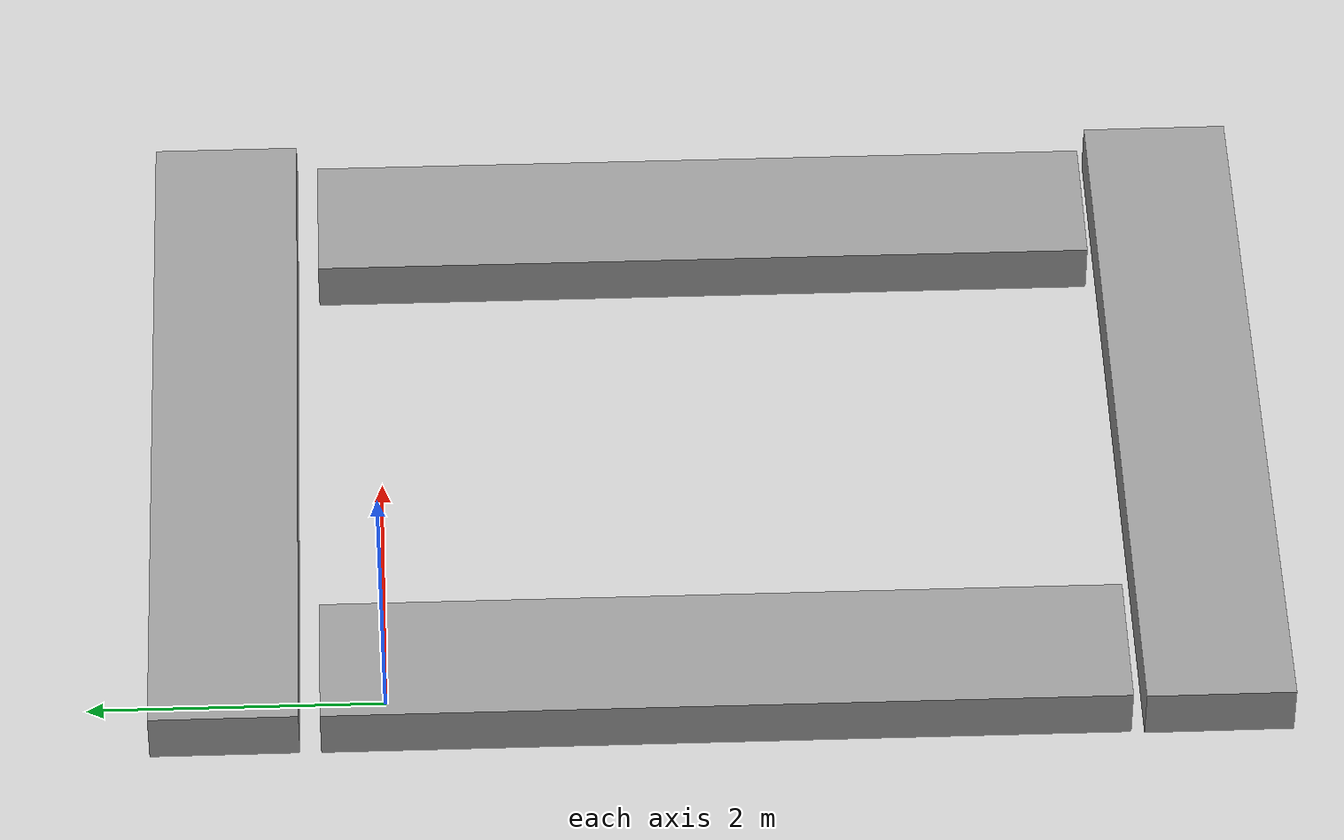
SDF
<sdf version="1.7">
 <world name="default">
  <light name="sun" type="directional">
   <pose>0 0 10 0 -0 0</pose>
   <diffuse>0.8 0.8 0.8 1</diffuse>
   <specular>0.2 0.2 0.2 1</specular>
   <attenuation>
    <range>1000</range>
    <constant>0.9</constant>
    <linear>0.01</linear>
    <quadratic>0.001</quadratic>
   </attenuation>
   <direction>-0.5 0.1 -0.9</direction>
   <spot><inner_angle>0</inner_angle><outer_angle>0</outer_angle><falloff>0</falloff></spot>
  </light>
  <model name="ground_plane">
   <static>1</static>
   <link name="link">
    <collision name="collision">
     <geometry><plane><normal>0 0 1</normal><size>100 100</size></plane></geometry>
     <surface>
      <contact><collide_bitmask>65535</collide_bitmask></contact>
      <friction><ode><mu>100</mu><mu2>50</mu2></ode></friction>
     </surface>
    </collision>
    <visual name="visual">
     <cast_shadows>0</cast_shadows>
     <geometry><plane><normal>0 0 1</normal><size>100 100</size></plane></geometry>
     <material>
      <script><uri>file://media/materials/scripts/gazebo.material</uri><name>Gazebo/Grey</name></script>
     </material>
    </visual>
   </link>
  </model>
  <gravity>0 0 -9.8</gravity>
  <magnetic_field>6e-06 2.3e-05 -4.2e-05</magnetic_field>
  <atmosphere type="adiabatic"/>
  <physics type="ode">
   <max_step_size>0.001</max_step_size>
   <real_time_factor>1</real_time_factor>
   <real_time_update_rate>1000</real_time_update_rate>
  </physics>
  <scene><ambient>0.4 0.4 0.4 1</ambient><background>0.7 0.7 0.7 1</background><shadows>1</shadows></scene>
  <spherical_coordinates>
   <surface_model>EARTH_WGS84</surface_model>
   <latitude_deg>0</latitude_deg>
   <longitude_deg>0</longitude_deg>
   <elevation>0</elevation>
   <heading_deg>0</heading_deg>
  </spherical_coordinates>
  <model name="unit_box">
   <pose>0.084055 -2.27208 0.178558 0.001473 -0 3e-06</pose>
   <link name="link">
    <inertial>
     <mass>1</mass>
     <inertia>
      <ixx>0.166667</ixx>
      <ixy>0</ixy>
      <ixz>0</ixz>
      <iyy>0.166667</iyy>
      <iyz>0</iyz>
      <izz>0.166667</izz>
     </inertia>
    </inertial>
    <collision name="collision"><geometry><box><size>1 5.40805 0.365078</size></box></geometry></collision>
    <visual name="visual">
     <geometry><box><size>1 5.40805 0.365078</size></box></geometry>
     <material>
      <script><name>Gazebo/Grey</name><uri>file://media/materials/scripts/gazebo.material</uri></script>
     </material>
    </visual>
   </link>
  </model>
  <model name="unit_box_clone">
   <pose>2.2697 -5.55576 0.182539 -3.14159 1e-06 1.57369</pose>
   <link name="link">
    <inertial>
     <mass>1</mass>
     <inertia>
      <ixx>0.166667</ixx>
      <ixy>0</ixy>
      <ixz>0</ixz>
      <iyy>0.166667</iyy>
      <iyz>0</iyz>
      <izz>0.166667</izz>
     </inertia>
    </inertial>
    <collision name="collision"><geometry><box><size>1 5.40805 0.365078</size></box></geometry></collision>
    <visual name="visual">
     <geometry><box><size>1 5.40805 0.365078</size></box></geometry>
     <material>
      <script><name>Gazebo/Grey</name><uri>file://media/materials/scripts/gazebo.material</uri></script>
     </material>
    </visual>
   </link>
  </model>
  <model name="unit_box_clone_0">
   <pose>4.26857 -2.27815 0.178558 0.001473 -0 2e-06</pose>
   <link name="link">
    <inertial>
     <mass>1</mass>
     <inertia>
      <ixx>0.166667</ixx>
      <ixy>0</ixy>
      <ixz>0</ixz>
      <iyy>0.166667</iyy>
      <iyz>0</iyz>
      <izz>0.166667</izz>
     </inertia>
    </inertial>
    <collision name="collision"><geometry><box><size>1 5.40805 0.365078</size></box></geometry></collision>
    <visual name="visual">
     <geometry><box><size>1 5.40805 0.365078</size></box></geometry>
     <material>
      <script><name>Gazebo/Grey</name><uri>file://media/materials/scripts/gazebo.material</uri></script>
     </material>
    </visual>
   </link>
  </model>
  <model name="unit_box_clone_clone">
   <pose>2.29082 1.07606 0.178558 -3.14012 -0 1.57086</pose>
   <link name="link">
    <inertial>
     <mass>1</mass>
     <inertia>
      <ixx>0.166667</ixx>
      <ixy>0</ixy>
      <ixz>0</ixz>
      <iyy>0.166667</iyy>
      <iyz>0</iyz>
      <izz>0.166667</izz>
     </inertia>
    </inertial>
    <collision name="collision"><geometry><box><size>1 5.40805 0.365078</size></box></geometry></collision>
    <visual name="visual">
     <geometry><box><size>1 5.40805 0.365078</size></box></geometry>
     <material>
      <script><name>Gazebo/Grey</name><uri>file://media/materials/scripts/gazebo.material</uri></script>
     </material>
    </visual>
   </link>
  </model>
 </world>
</sdf>
